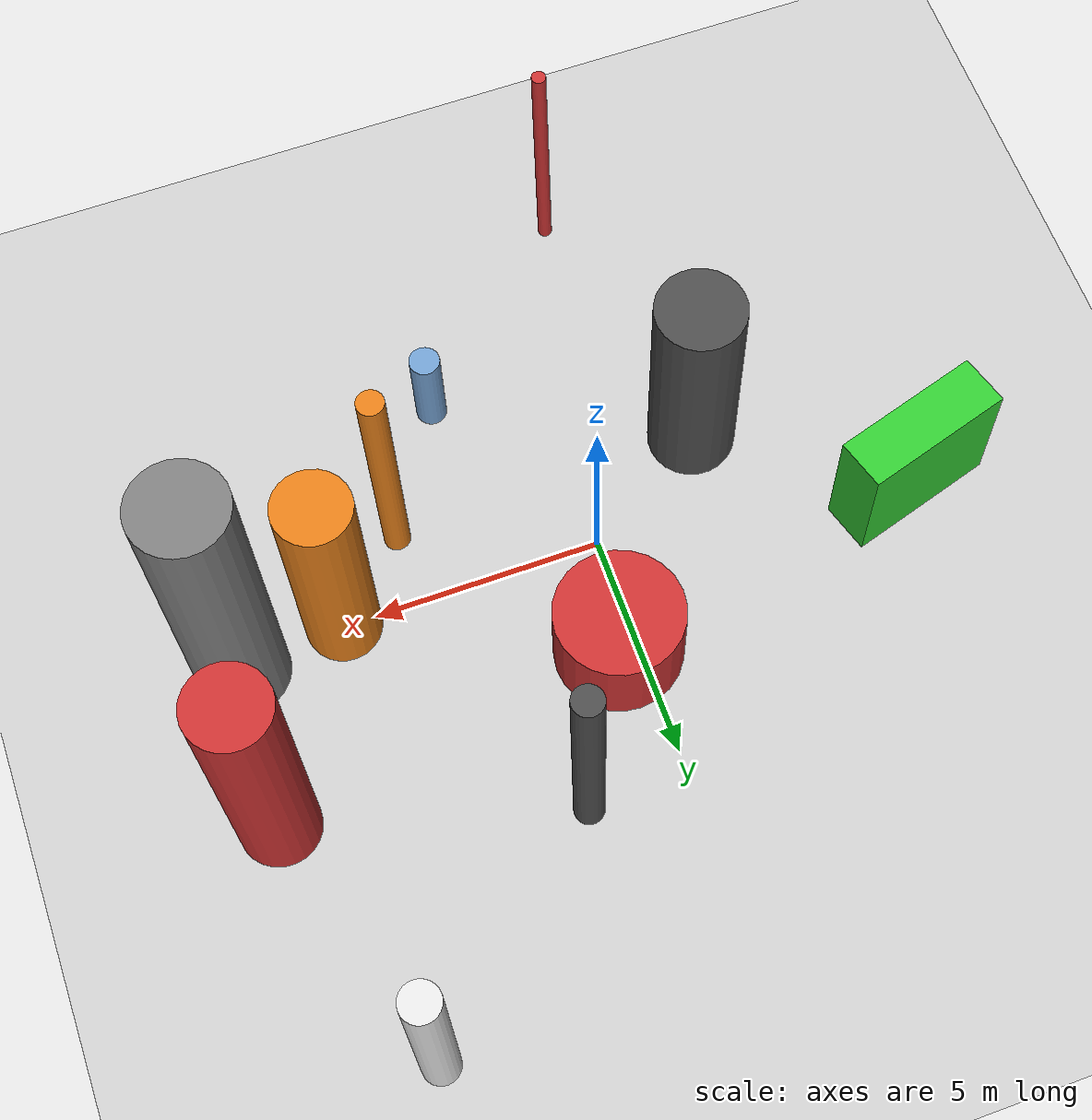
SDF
<?xml version='1.0'?>
<sdf version='1.6'>
  <world name='default'>
    <!-- Sun light -->
    <light name='sun' type='directional'>
      <cast_shadows>1</cast_shadows>
      <pose>0 0 10 0 0 0</pose>
      <diffuse>0.8 0.8 0.8 1</diffuse>
      <specular>0.2 0.2 0.2 1</specular>
      <attenuation>
        <range>1000</range>
        <constant>0.9</constant>
        <linear>0.01</linear>
        <quadratic>0.001</quadratic>
      </attenuation>
      <direction>-0.5 0.1 -0.9</direction>
    </light>

    <!-- Ground plane -->
    <model name='ground_plane'>
      <static>1</static>
      <link name='link'>
        <collision name='collision'>
          <geometry>
            <plane>
              <normal>0 0 1</normal>
              <size>100 100</size>
            </plane>
          </geometry>
          <surface>
            <contact>
              <collide_bitmask>65535</collide_bitmask>
              <ode/>
            </contact>
            <friction>
              <ode>
                <mu>100</mu>
                <mu2>50</mu2>
              </ode>
              <torsional><ode/></torsional>
            </friction>
            <bounce/>
          </surface>
          <max_contacts>10</max_contacts>
        </collision>
        <visual name='visual'>
          <cast_shadows>0</cast_shadows>
          <geometry>
            <plane>
              <normal>0 0 1</normal>
              <size>100 100</size>
            </plane>
          </geometry>
          <material>
            <script>
              <uri>file://media/materials/scripts/gazebo.material</uri>
              <n>Gazebo/Grey</n>
            </script>
          </material>
        </visual>
      </link>
    </model>

    <!-- Environment -->
    <magnetic_field>6e-06 2.3e-05 -4.2e-05</magnetic_field>
    <atmosphere type='adiabatic'/>
    <physics name='default_physics' default='0' type='ode'>
      <gravity>0 0 -9.8</gravity>
      <max_step_size>0.004</max_step_size>
      <real_time_factor>1</real_time_factor>
      <real_time_update_rate>250</real_time_update_rate>
    </physics>
    <scene>
      <ambient>0.4 0.4 0.4 1</ambient>
      <background>0.7 0.7 0.7 1</background>
      <shadows>1</shadows>
    </scene>
    <wind/>
    <spherical_coordinates>
      <surface_model>EARTH_WGS84</surface_model>
      <latitude_deg>0</latitude_deg>
      <longitude_deg>0</longitude_deg>
      <elevation>0</elevation>
      <heading_deg>0</heading_deg>
    </spherical_coordinates>

    <!-- ============ OBSTACLES (11) ============ -->
    <model name='obs_00'>
      <static>1</static>
      <link name='link'>
        <visual name='visual'>
          <geometry>
            <cylinder>
              <radius>0.1551</radius>
              <length>5.7014</length>
            </cylinder>
          </geometry>
          <material>
            <script>
              <n>Gazebo/Red</n>
              <uri>file://media/materials/scripts/gazebo.material</uri>
            </script>
            <ambient>0.8 0.2 0.2 1</ambient>
          </material>
        </visual>
        <collision name='collision'>
          <geometry>
            <cylinder>
              <radius>0.1551</radius>
              <length>5.7014</length>
            </cylinder>
          </geometry>
          <max_contacts>10</max_contacts>
          <surface>
            <contact><ode/></contact>
            <bounce/>
            <friction>
              <ode><mu>1</mu><mu2>1</mu2></ode>
              <torsional><ode/></torsional>
            </friction>
          </surface>
        </collision>
      </link>
      <pose>-1.5826 -7.9804 2.8507 0 0 1.0386</pose>
    </model>

    <model name='obs_01'>
      <static>1</static>
      <link name='link'>
        <visual name='visual'>
          <geometry>
            <cylinder>
              <radius>1.3877</radius>
              <length>2.0440</length>
            </cylinder>
          </geometry>
          <material>
            <script>
              <n>Gazebo/Red</n>
              <uri>file://media/materials/scripts/gazebo.material</uri>
            </script>
            <ambient>0.8 0.2 0.2 1</ambient>
          </material>
        </visual>
        <collision name='collision'>
          <geometry>
            <cylinder>
              <radius>1.3877</radius>
              <length>2.0440</length>
            </cylinder>
          </geometry>
          <max_contacts>10</max_contacts>
          <surface>
            <contact><ode/></contact>
            <bounce/>
            <friction>
              <ode><mu>1</mu><mu2>1</mu2></ode>
              <torsional><ode/></torsional>
            </friction>
          </surface>
        </collision>
      </link>
      <pose>0.4062 2.4560 1.0220 0 0 2.6240</pose>
    </model>

    <model name='obs_02'>
      <static>1</static>
      <link name='link'>
        <visual name='visual'>
          <geometry>
            <cylinder>
              <radius>0.2888</radius>
              <length>6.0650</length>
            </cylinder>
          </geometry>
          <material>
            <script>
              <n>Gazebo/Orange</n>
              <uri>file://media/materials/scripts/gazebo.material</uri>
            </script>
            <ambient>0.9 0.5 0.1 1</ambient>
          </material>
        </visual>
        <collision name='collision'>
          <geometry>
            <cylinder>
              <radius>0.2888</radius>
              <length>6.0650</length>
            </cylinder>
          </geometry>
          <max_contacts>10</max_contacts>
          <surface>
            <contact><ode/></contact>
            <bounce/>
            <friction>
              <ode><mu>1</mu><mu2>1</mu2></ode>
              <torsional><ode/></torsional>
            </friction>
          </surface>
        </collision>
      </link>
      <pose>4.0145 -1.6235 3.0325 0 0 2.4490</pose>
    </model>

    <model name='obs_03'>
      <static>1</static>
      <link name='link'>
        <visual name='visual'>
          <geometry>
            <cylinder>
              <radius>0.9950</radius>
              <length>7.8410</length>
            </cylinder>
          </geometry>
          <material>
            <script>
              <n>Gazebo/Grey</n>
              <uri>file://media/materials/scripts/gazebo.material</uri>
            </script>
            <ambient>0.5 0.5 0.5 1</ambient>
          </material>
        </visual>
        <collision name='collision'>
          <geometry>
            <cylinder>
              <radius>0.9950</radius>
              <length>7.8410</length>
            </cylinder>
          </geometry>
          <max_contacts>10</max_contacts>
          <surface>
            <contact><ode/></contact>
            <bounce/>
            <friction>
              <ode><mu>1</mu><mu2>1</mu2></ode>
              <torsional><ode/></torsional>
            </friction>
          </surface>
        </collision>
      </link>
      <pose>7.9724 0.2317 3.9205 0 0 2.0242</pose>
    </model>

    <model name='obs_04'>
      <static>1</static>
      <link name='link'>
        <visual name='visual'>
          <geometry>
            <cylinder>
              <radius>0.3346</radius>
              <length>2.2229</length>
            </cylinder>
          </geometry>
          <material>
            <script>
              <n>Gazebo/Blue</n>
              <uri>file://media/materials/scripts/gazebo.material</uri>
            </script>
            <ambient>0.447 0.624 0.812 1</ambient>
          </material>
        </visual>
        <collision name='collision'>
          <geometry>
            <cylinder>
              <radius>0.3346</radius>
              <length>2.2229</length>
            </cylinder>
          </geometry>
          <max_contacts>10</max_contacts>
          <surface>
            <contact><ode/></contact>
            <bounce/>
            <friction>
              <ode><mu>1</mu><mu2>1</mu2></ode>
              <torsional><ode/></torsional>
            </friction>
          </surface>
        </collision>
      </link>
      <pose>2.3540 -4.3459 1.1115 0 0 1.4586</pose>
    </model>

    <model name='obs_05'>
      <static>1</static>
      <link name='link'>
        <visual name='visual'>
          <geometry>
            <cylinder>
              <radius>0.8164</radius>
              <length>5.7374</length>
            </cylinder>
          </geometry>
          <material>
            <script>
              <n>Gazebo/Orange</n>
              <uri>file://media/materials/scripts/gazebo.material</uri>
            </script>
            <ambient>0.9 0.5 0.1 1</ambient>
          </material>
        </visual>
        <collision name='collision'>
          <geometry>
            <cylinder>
              <radius>0.8164</radius>
              <length>5.7374</length>
            </cylinder>
          </geometry>
          <max_contacts>10</max_contacts>
          <surface>
            <contact><ode/></contact>
            <bounce/>
            <friction>
              <ode><mu>1</mu><mu2>1</mu2></ode>
              <torsional><ode/></torsional>
            </friction>
          </surface>
        </collision>
      </link>
      <pose>5.6952 -0.0452 2.8687 0 0 2.6774</pose>
    </model>

    <model name='obs_06'>
      <static>1</static>
      <link name='link'>
        <visual name='visual'>
          <geometry>
            <cylinder>
              <radius>0.3257</radius>
              <length>6.3074</length>
            </cylinder>
          </geometry>
          <material>
            <script>
              <n>Gazebo/DarkGrey</n>
              <uri>file://media/materials/scripts/gazebo.material</uri>
            </script>
            <ambient>0.3 0.3 0.3 1</ambient>
          </material>
        </visual>
        <collision name='collision'>
          <geometry>
            <cylinder>
              <radius>0.3257</radius>
              <length>6.3074</length>
            </cylinder>
          </geometry>
          <max_contacts>10</max_contacts>
          <surface>
            <contact><ode/></contact>
            <bounce/>
            <friction>
              <ode><mu>1</mu><mu2>1</mu2></ode>
              <torsional><ode/></torsional>
            </friction>
          </surface>
        </collision>
      </link>
      <pose>2.1800 5.5592 3.1537 0 0 2.3202</pose>
    </model>

    <model name='obs_07'>
      <static>1</static>
      <link name='link'>
        <visual name='visual'>
          <geometry>
            <cylinder>
              <radius>0.4060</radius>
              <length>5.5304</length>
            </cylinder>
          </geometry>
          <material>
            <script>
              <n>Gazebo/White</n>
              <uri>file://media/materials/scripts/gazebo.material</uri>
            </script>
            <ambient>0.9 0.9 0.9 1</ambient>
          </material>
        </visual>
        <collision name='collision'>
          <geometry>
            <cylinder>
              <radius>0.4060</radius>
              <length>5.5304</length>
            </cylinder>
          </geometry>
          <max_contacts>10</max_contacts>
          <surface>
            <contact><ode/></contact>
            <bounce/>
            <friction>
              <ode><mu>1</mu><mu2>1</mu2></ode>
              <torsional><ode/></torsional>
            </friction>
          </surface>
        </collision>
      </link>
      <pose>6.6300 9.4624 2.7652 0 0 0.0304</pose>
    </model>

    <model name='obs_08'>
      <static>1</static>
      <link name='link'>
        <visual name='visual'>
          <geometry>
            <cylinder>
              <radius>0.9598</radius>
              <length>5.3526</length>
            </cylinder>
          </geometry>
          <material>
            <script>
              <n>Gazebo/DarkGrey</n>
              <uri>file://media/materials/scripts/gazebo.material</uri>
            </script>
            <ambient>0.3 0.3 0.3 1</ambient>
          </material>
        </visual>
        <collision name='collision'>
          <geometry>
            <cylinder>
              <radius>0.9598</radius>
              <length>5.3526</length>
            </cylinder>
          </geometry>
          <max_contacts>10</max_contacts>
          <surface>
            <contact><ode/></contact>
            <bounce/>
            <friction>
              <ode><mu>1</mu><mu2>1</mu2></ode>
              <torsional><ode/></torsional>
            </friction>
          </surface>
        </collision>
      </link>
      <pose>-2.8416 -1.8049 2.6763 0 0 1.1232</pose>
    </model>

    <model name='obs_09'>
      <static>1</static>
      <link name='link'>
        <visual name='visual'>
          <geometry>
            <box>
              <size>3.3524 1.1400 3.0039</size>
            </box>
          </geometry>
          <material>
            <script>
              <n>Gazebo/Green</n>
              <uri>file://media/materials/scripts/gazebo.material</uri>
            </script>
            <ambient>0.2 0.8 0.2 1</ambient>
          </material>
        </visual>
        <collision name='collision'>
          <geometry>
            <box>
              <size>3.3524 1.1400 3.0039</size>
            </box>
          </geometry>
          <max_contacts>10</max_contacts>
          <surface>
            <contact><ode/></contact>
            <bounce/>
            <friction>
              <ode><mu>1</mu><mu2>1</mu2></ode>
              <torsional><ode/></torsional>
            </friction>
          </surface>
        </collision>
      </link>
      <pose>-6.7925 0.9628 1.5019 0 0 0.2920</pose>
    </model>

    <model name='obs_10'>
      <static>1</static>
      <link name='link'>
        <visual name='visual'>
          <geometry>
            <cylinder>
              <radius>0.8636</radius>
              <length>6.9547</length>
            </cylinder>
          </geometry>
          <material>
            <script>
              <n>Gazebo/Red</n>
              <uri>file://media/materials/scripts/gazebo.material</uri>
            </script>
            <ambient>0.8 0.2 0.2 1</ambient>
          </material>
        </visual>
        <collision name='collision'>
          <geometry>
            <cylinder>
              <radius>0.8636</radius>
              <length>6.9547</length>
            </cylinder>
          </geometry>
          <max_contacts>10</max_contacts>
          <surface>
            <contact><ode/></contact>
            <bounce/>
            <friction>
              <ode><mu>1</mu><mu2>1</mu2></ode>
              <torsional><ode/></torsional>
            </friction>
          </surface>
        </collision>
      </link>
      <pose>8.2071 3.7641 3.4774 0 0 0.8540</pose>
    </model>

    <!-- GUI camera -->
    <gui fullscreen='0'>
      <camera name='user_camera'>
        <pose>-15 0 18 0 0.85 0.15</pose>
        <view_controller>orbit</view_controller>
        <projection_type>perspective</projection_type>
      </camera>
    </gui>
  </world>
</sdf>
